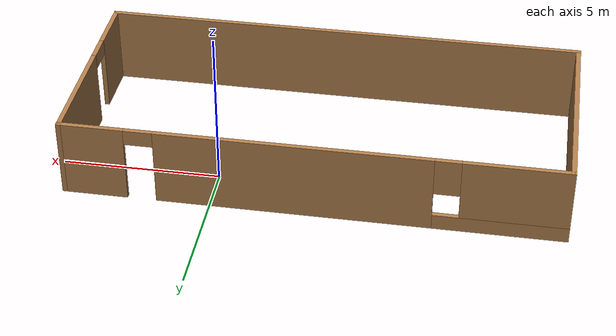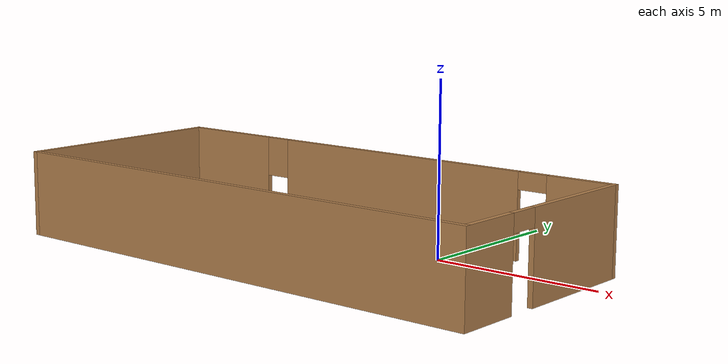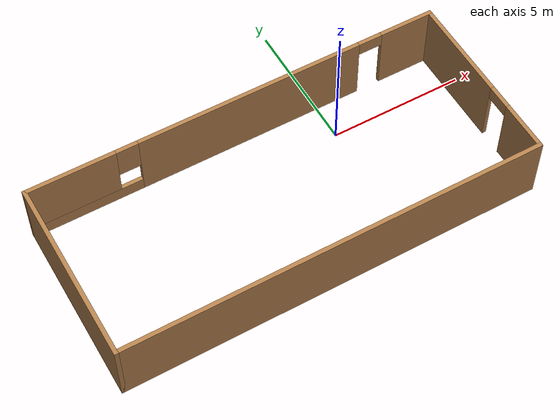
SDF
<?xml version='1.0'?>
<sdf version='1.6'>
  <model name='facility'>
    <pose frame=''>-3.1213 -1.89841 0 0 -0 0</pose>
    <link name='Wall_5'>
      <collision name='Wall_5_Collision'>
        <geometry>
          <box>
            <size>15.5 0.15 2.5</size>
          </box>
        </geometry>
        <pose frame=''>0 0 1.25 0 -0 0</pose>
      </collision>
      <visual name='Wall_5_Visual'>
        <pose frame=''>0 0 1.25 0 -0 0</pose>
        <geometry>
          <box>
            <size>15.5 0.15 2.5</size>
          </box>
        </geometry>
        <material>
          <script>
            <uri>file://media/materials/scripts/gazebo.material</uri>
            <name>Gazebo/Wood</name>
          </script>
          <ambient>1 1 1 1</ambient>
        </material>
        <meta>
          <layer>0</layer>
        </meta>
      </visual>
      <pose frame=''>0 -3.3 0 0 -0 0</pose>
    </link>
    <link name='Wall_6'>
      <pose frame=''>7.675 0 0 0 -0 1.5708</pose>
      <visual name='Wall_6_Visual_0'>
        <pose frame=''>-2.41753 0 1.25 0 -0 0</pose>
        <geometry>
          <box>
            <size>1.91493 0.15 2.5</size>
          </box>
        </geometry>
        <material>
          <script>
            <uri>file://media/materials/scripts/gazebo.material</uri>
            <name>Gazebo/Wood</name>
          </script>
          <ambient>1 1 1 1</ambient>
        </material>
        <meta>
          <layer>0</layer>
        </meta>
      </visual>
      <collision name='Wall_6_Collision_0'>
        <geometry>
          <box>
            <size>1.91493 0.15 2.5</size>
          </box>
        </geometry>
        <pose frame=''>-2.41753 0 1.25 0 -0 0</pose>
      </collision>
      <visual name='Wall_6_Visual_1'>
        <pose frame=''>1.40746 0 1.25 0 -0 0</pose>
        <geometry>
          <box>
            <size>3.93507 0.15 2.5</size>
          </box>
        </geometry>
        <material>
          <script>
            <uri>file://media/materials/scripts/gazebo.material</uri>
            <name>Gazebo/Wood</name>
          </script>
          <ambient>1 1 1 1</ambient>
        </material>
        <meta>
          <layer>0</layer>
        </meta>
      </visual>
      <collision name='Wall_6_Collision_1'>
        <geometry>
          <box>
            <size>3.93507 0.15 2.5</size>
          </box>
        </geometry>
        <pose frame=''>1.40746 0 1.25 0 -0 0</pose>
      </collision>
      <visual name='Wall_6_Visual_2'>
        <pose frame=''>-1.01007 0 2.25 0 -0 0</pose>
        <geometry>
          <box>
            <size>0.9 0.15 0.5</size>
          </box>
        </geometry>
        <material>
          <script>
            <uri>file://media/materials/scripts/gazebo.material</uri>
            <name>Gazebo/Wood</name>
          </script>
          <ambient>1 1 1 1</ambient>
        </material>
        <meta>
          <layer>0</layer>
        </meta>
      </visual>
      <collision name='Wall_6_Collision_2'>
        <geometry>
          <box>
            <size>0.9 0.15 0.5</size>
          </box>
        </geometry>
        <pose frame=''>-1.01007 0 2.25 0 -0 0</pose>
      </collision>
    </link>
    <link name='Wall_7'>
      <pose frame=''>0 3.3 0 0 -0 3.14159</pose>
      <visual name='Wall_7_Visual_0'>
        <pose frame=''>-6.71594 0 1.25 0 -0 0</pose>
        <geometry>
          <box>
            <size>2.06812 0.15 2.5</size>
          </box>
        </geometry>
        <material>
          <script>
            <uri>file://media/materials/scripts/gazebo.material</uri>
            <name>Gazebo/Wood</name>
          </script>
          <ambient>1 1 1 1</ambient>
        </material>
        <meta>
          <layer>0</layer>
        </meta>
      </visual>
      <collision name='Wall_7_Collision_0'>
        <geometry>
          <box>
            <size>2.06812 0.15 2.5</size>
          </box>
        </geometry>
        <pose frame=''>-6.71594 0 1.25 0 -0 0</pose>
      </collision>
      <visual name='Wall_7_Visual_1'>
        <pose frame=''>-0.557627 0 1.25 0 -0 0</pose>
        <geometry>
          <box>
            <size>8.4485 0.15 2.5</size>
          </box>
        </geometry>
        <material>
          <script>
            <uri>file://media/materials/scripts/gazebo.material</uri>
            <name>Gazebo/Wood</name>
          </script>
          <ambient>1 1 1 1</ambient>
        </material>
        <meta>
          <layer>0</layer>
        </meta>
      </visual>
      <collision name='Wall_7_Collision_1'>
        <geometry>
          <box>
            <size>8.4485 0.15 2.5</size>
          </box>
        </geometry>
        <pose frame=''>-0.557627 0 1.25 0 -0 0</pose>
      </collision>
      <visual name='Wall_7_Visual_2'>
        <pose frame=''>5.70831 0 0.25 0 -0 0</pose>
        <geometry>
          <box>
            <size>4.08338 0.15 0.5</size>
          </box>
        </geometry>
        <material>
          <script>
            <uri>file://media/materials/scripts/gazebo.material</uri>
            <name>Gazebo/Wood</name>
          </script>
          <ambient>1 1 1 1</ambient>
        </material>
        <meta>
          <layer>0</layer>
        </meta>
      </visual>
      <collision name='Wall_7_Collision_2'>
        <geometry>
          <box>
            <size>4.08338 0.15 0.5</size>
          </box>
        </geometry>
        <pose frame=''>5.70831 0 0.25 0 -0 0</pose>
      </collision>
      <visual name='Wall_7_Visual_3'>
        <pose frame=''>6.10831 0 1.5 0 -0 0</pose>
        <geometry>
          <box>
            <size>3.28337 0.15 2</size>
          </box>
        </geometry>
        <material>
          <script>
            <uri>file://media/materials/scripts/gazebo.material</uri>
            <name>Gazebo/Wood</name>
          </script>
          <ambient>1 1 1 1</ambient>
        </material>
        <meta>
          <layer>0</layer>
        </meta>
      </visual>
      <collision name='Wall_7_Collision_3'>
        <geometry>
          <box>
            <size>3.28337 0.15 2</size>
          </box>
        </geometry>
        <pose frame=''>6.10831 0 1.5 0 -0 0</pose>
      </collision>
      <visual name='Wall_7_Visual_4'>
        <pose frame=''>4.06663 0 1.9 0 -0 0</pose>
        <geometry>
          <box>
            <size>0.8 0.15 1.2</size>
          </box>
        </geometry>
        <material>
          <script>
            <uri>file://media/materials/scripts/gazebo.material</uri>
            <name>Gazebo/Wood</name>
          </script>
          <ambient>1 1 1 1</ambient>
        </material>
        <meta>
          <layer>0</layer>
        </meta>
      </visual>
      <collision name='Wall_7_Collision_4'>
        <geometry>
          <box>
            <size>0.8 0.15 1.2</size>
          </box>
        </geometry>
        <pose frame=''>4.06663 0 1.9 0 -0 0</pose>
      </collision>
      <visual name='Wall_7_Visual_5'>
        <pose frame=''>-5.23188 0 2.25 0 -0 0</pose>
        <geometry>
          <box>
            <size>0.9 0.15 0.5</size>
          </box>
        </geometry>
        <material>
          <script>
            <uri>file://media/materials/scripts/gazebo.material</uri>
            <name>Gazebo/Wood</name>
          </script>
          <ambient>1 1 1 1</ambient>
        </material>
        <meta>
          <layer>0</layer>
        </meta>
      </visual>
      <collision name='Wall_7_Collision_5'>
        <geometry>
          <box>
            <size>0.9 0.15 0.5</size>
          </box>
        </geometry>
        <pose frame=''>-5.23188 0 2.25 0 -0 0</pose>
      </collision>
    </link>
    <link name='Wall_8'>
      <collision name='Wall_8_Collision'>
        <geometry>
          <box>
            <size>6.75 0.15 2.5</size>
          </box>
        </geometry>
        <pose frame=''>0 0 1.25 0 -0 0</pose>
      </collision>
      <visual name='Wall_8_Visual'>
        <pose frame=''>0 0 1.25 0 -0 0</pose>
        <geometry>
          <box>
            <size>6.75 0.15 2.5</size>
          </box>
        </geometry>
        <material>
          <script>
            <uri>file://media/materials/scripts/gazebo.material</uri>
            <name>Gazebo/Wood</name>
          </script>
          <ambient>1 1 1 1</ambient>
        </material>
        <meta>
          <layer>0</layer>
        </meta>
      </visual>
      <pose frame=''>-7.675 0 0 0 -0 -1.5708</pose>
    </link>
    <static>1</static>
  </model>
</sdf>
